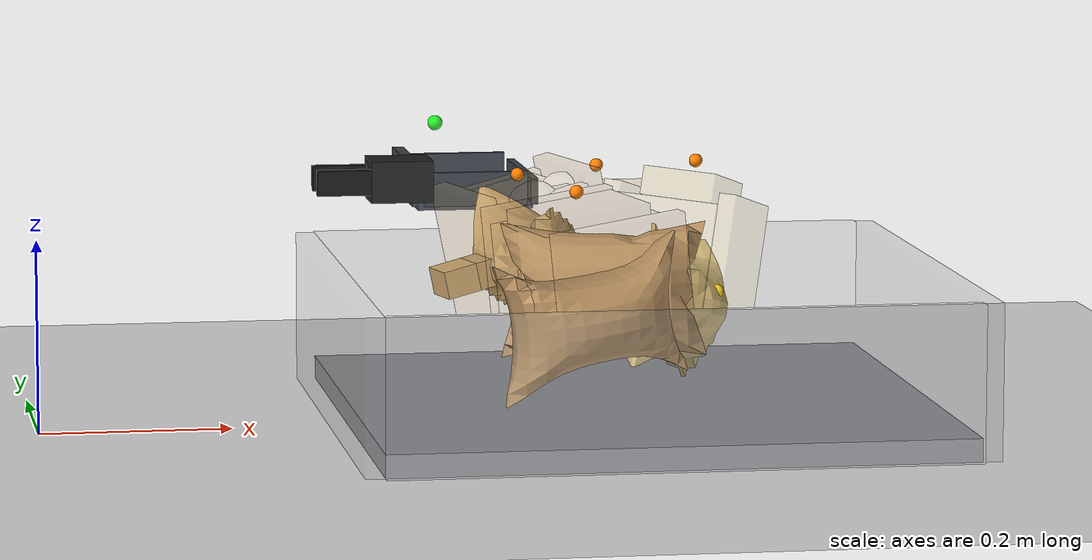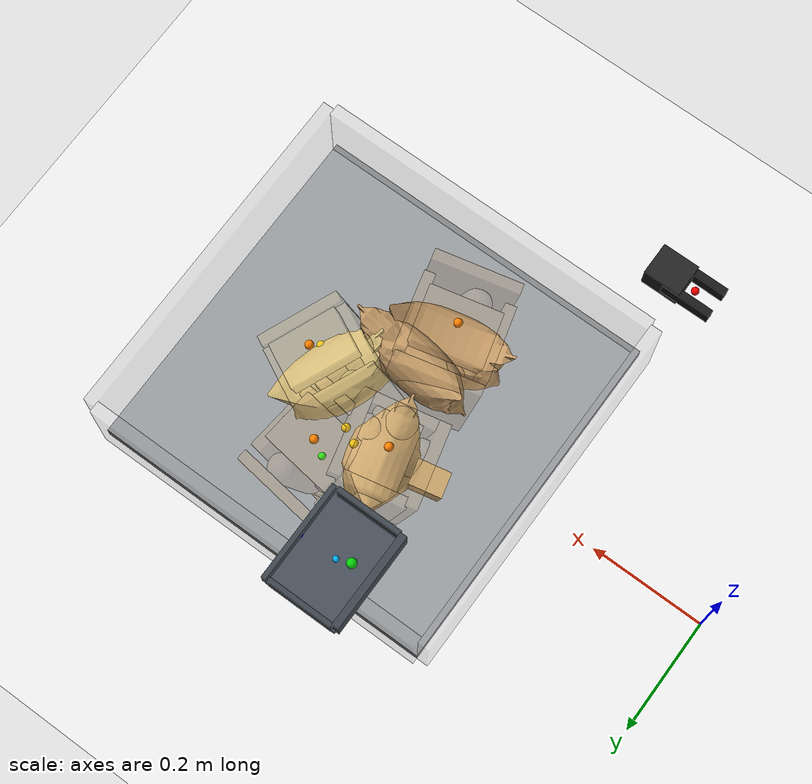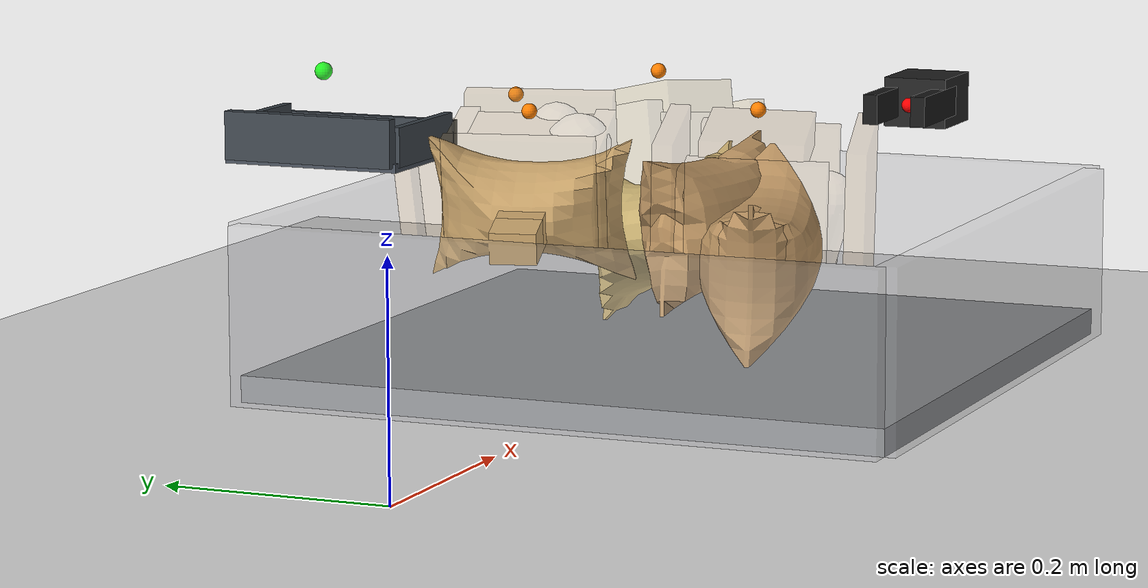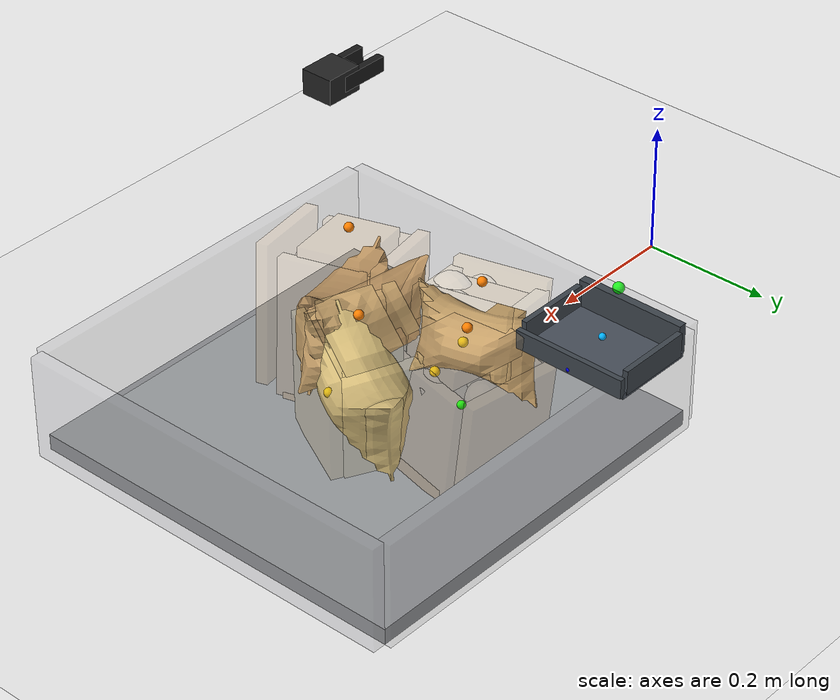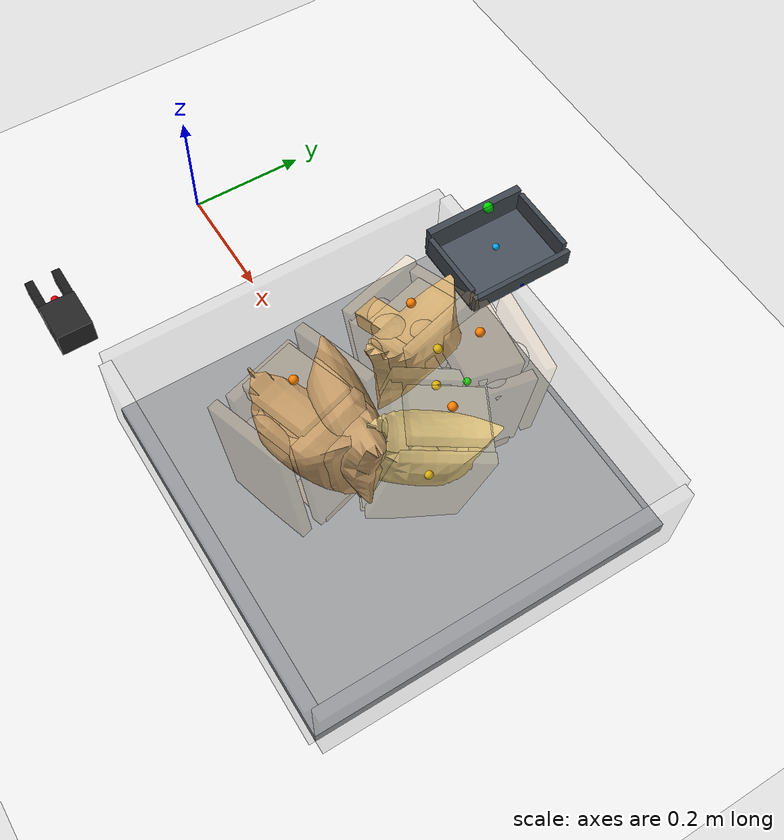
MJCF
<mujoco model="fixed_2f_scoop_pose_seed4">
  <compiler angle="radian" coordinate="local" inertiafromgeom="true" meshdir="D:/Michael/2025/01.Research/01.Parceldetection/16.Pybullet/bullet3-master (1)/bullet3-master/examples/pybullet/examples/DeformableTest/Sackcodex2/object"/>
  <option timestep="0.002" gravity="0 0 -9.81" integrator="implicitfast" iterations="100" tolerance="1e-8"/>
  <size memory="768M" nconmax="12000"/>

  <visual>
    <global azimuth="128" elevation="-20"/>
    <headlight ambient="0.34 0.34 0.34" diffuse="0.78 0.78 0.78" specular="0.15 0.15 0.15"/>
    <rgba haze="0.11 0.13 0.18 1"/>
  </visual>

  <default>
    <geom condim="4" friction="1.15 0.03 0.01" margin="0.003" solimp="0.93 0.98 0.003" solref="0.012 1"/>
    <joint damping="1.2" armature="0.002"/>
    <position kp="2500" forcelimited="true" forcerange="-420 420"/>
    <motor ctrllimited="true"/>
  </default>

  <asset>
    <mesh name="sack_0_visual_mesh" file="sack3.obj" scale="0.0743 0.0743 0.0768"/>
    <mesh name="sack_1_visual_mesh" file="sack8.obj" scale="0.0729 0.0729 0.0778"/>
    <mesh name="sack_2_visual_mesh" file="sack6Apply.obj" scale="0.0755 0.0755 0.0789"/>
    <mesh name="sack_3_visual_mesh" file="sack10.obj" scale="0.0684 0.0684 0.0700"/>
  </asset>

  <worldbody>
    <light name="key" pos="0.85 0.15 1.8" dir="-0.2 -0.1 -1" directional="true"/>
    <geom name="floor" type="plane" size="2 2 0.1" rgba="0.93 0.93 0.93 1"/>
    <geom name="work_pad" type="box" pos="0.62 0 0.012" size="0.30 0.30 0.012" rgba="0.60 0.61 0.62 1" friction="1.4 0.05 0.01"/>
    <geom name="corral_front" type="box" pos="0.93 0.00 0.08" size="0.010 0.30 0.08" rgba="0.55 0.55 0.58 0.22" friction="1.0 0.03 0.01"/>
    <geom name="corral_back" type="box" pos="0.31 0.00 0.08" size="0.010 0.30 0.08" rgba="0.55 0.55 0.58 0.18" friction="1.0 0.03 0.01"/>
    <geom name="corral_left" type="box" pos="0.62 0.30 0.08" size="0.30 0.010 0.08" rgba="0.55 0.55 0.58 0.14" friction="1.0 0.03 0.01"/>
    <geom name="corral_right" type="box" pos="0.62 -0.30 0.08" size="0.30 0.010 0.08" rgba="0.55 0.55 0.58 0.14" friction="1.0 0.03 0.01"/>
    <camera name="overview" pos="1.22 0.00 0.92" xyaxes="0 1 0 -0.46 0 0.88"/>

    <body name="gripper_mocap" mocap="true" pos="0.36 -0.33 0.30" quat="0.707107 0 -0.707107 0"/>
    <body name="scoop_mocap" mocap="true" pos="0.42 0.28 0.20" quat="1 0 0 0"/>

    <body name="gripper_ctrl_base" pos="0.36 -0.33 0.30">
      <inertial pos="0 0 0" mass="0.001" diaginertia="1e-6 1e-6 1e-6"/>
      <joint name="gripper_ctrl_x" type="slide" axis="1 0 0" limited="true" range="0.20 1.00"/>
      <body name="gripper_ctrl_y_body">
        <inertial pos="0 0 0" mass="0.001" diaginertia="1e-6 1e-6 1e-6"/>
        <joint name="gripper_ctrl_y" type="slide" axis="0 1 0" limited="true" range="-0.60 0.60"/>
        <body name="gripper_ctrl_z_body">
          <inertial pos="0 0 0" mass="0.001" diaginertia="1e-6 1e-6 1e-6"/>
          <joint name="gripper_ctrl_z" type="slide" axis="0 0 1" limited="true" range="0.04 0.70"/>
          <body name="gripper_ctrl_yaw_body">
            <inertial pos="0 0 0" mass="0.001" diaginertia="1e-6 1e-6 1e-6"/>
            <joint name="gripper_ctrl_yaw" type="hinge" axis="0 0 1" limited="true" range="-3.1416 3.1416"/>
            <body name="gripper_ctrl_pitch_body">
              <inertial pos="0 0 0" mass="0.001" diaginertia="1e-6 1e-6 1e-6"/>
              <joint name="gripper_ctrl_pitch" type="hinge" axis="0 1 0" limited="true" range="-3.1416 3.1416"/>
              <body name="gripper_ctrl_roll_body">
                <inertial pos="0 0 0" mass="0.001" diaginertia="1e-6 1e-6 1e-6"/>
                <joint name="gripper_ctrl_roll" type="hinge" axis="1 0 0" limited="true" range="-3.1416 3.1416"/>
              </body>
            </body>
          </body>
        </body>
      </body>
    </body>

    <body name="scoop_ctrl_base" pos="0.42 0.28 0.20">
      <inertial pos="0 0 0" mass="0.001" diaginertia="1e-6 1e-6 1e-6"/>
      <joint name="scoop_ctrl_x" type="slide" axis="1 0 0" limited="true" range="0.20 1.00"/>
      <body name="scoop_ctrl_y_body">
        <inertial pos="0 0 0" mass="0.001" diaginertia="1e-6 1e-6 1e-6"/>
        <joint name="scoop_ctrl_y" type="slide" axis="0 1 0" limited="true" range="-0.60 0.60"/>
        <body name="scoop_ctrl_z_body">
          <inertial pos="0 0 0" mass="0.001" diaginertia="1e-6 1e-6 1e-6"/>
          <joint name="scoop_ctrl_z" type="slide" axis="0 0 1" limited="true" range="0.04 0.70"/>
          <body name="scoop_ctrl_yaw_body">
            <inertial pos="0 0 0" mass="0.001" diaginertia="1e-6 1e-6 1e-6"/>
            <joint name="scoop_ctrl_yaw" type="hinge" axis="0 0 1" limited="true" range="-3.1416 3.1416"/>
            <body name="scoop_ctrl_pitch_body">
              <inertial pos="0 0 0" mass="0.001" diaginertia="1e-6 1e-6 1e-6"/>
              <joint name="scoop_ctrl_pitch" type="hinge" axis="0 1 0" limited="true" range="-3.1416 3.1416"/>
              <body name="scoop_ctrl_roll_body">
                <inertial pos="0 0 0" mass="0.001" diaginertia="1e-6 1e-6 1e-6"/>
                <joint name="scoop_ctrl_roll" type="hinge" axis="1 0 0" limited="true" range="-3.1416 3.1416"/>
              </body>
            </body>
          </body>
        </body>
      </body>
    </body>

    <body name="gripper_tool" pos="0.36 -0.33 0.30" quat="0.707107 0 -0.707107 0">
      <freejoint name="gripper_tool_free"/>
      <inertial pos="0 0 0.04" mass="0.08" diaginertia="0.0002 0.0002 0.0002"/>
      <geom name="gripper_palm" type="box" pos="0 0 0.030" size="0.020 0.026 0.030" rgba="0.14 0.14 0.14 1"/>
      <body name="left_finger_body" pos="0 0 0.072">
        <joint name="left_finger_slide" type="slide" axis="0 1 0" limited="true" range="0.010 0.040" damping="12"/>
        <geom name="left_finger_geom" type="box" pos="0 0.020 0" size="0.012 0.006 0.040" rgba="0.10 0.10 0.10 1" friction="2.2 0.05 0.01"/>
      </body>
      <body name="right_finger_body" pos="0 0 0.072">
        <joint name="right_finger_slide" type="slide" axis="0 -1 0" limited="true" range="0.010 0.040" damping="12"/>
        <geom name="right_finger_geom" type="box" pos="0 -0.020 0" size="0.012 0.006 0.040" rgba="0.10 0.10 0.10 1" friction="2.2 0.05 0.01"/>
      </body>
      <site name="gripper_pinch_site" pos="0 0 0.074" size="0.006" rgba="1 0 0 1"/>
    </body>

    <body name="scoop_tool" pos="0.42 0.28 0.20" quat="1 0 0 0">
      <freejoint name="scoop_tool_free"/>
      <inertial pos="0 0 0.02" mass="0.10" diaginertia="0.0003 0.0003 0.0003"/>
      <geom name="scoop_plate" type="box" pos="0.062 0 0" size="0.062 0.085 0.004" rgba="0.28 0.31 0.35 1" friction="1.7 0.05 0.01"/>
      <geom name="scoop_lip" type="box" pos="0.126 0 0.014" size="0.004 0.085 0.014" rgba="0.24 0.27 0.30 1" friction="1.7 0.05 0.01"/>
      <geom name="scoop_left_rail" type="box" pos="0.062 0.082 0.018" size="0.056 0.004 0.018" rgba="0.24 0.27 0.30 1"/>
      <geom name="scoop_right_rail" type="box" pos="0.062 -0.082 0.018" size="0.056 0.004 0.018" rgba="0.24 0.27 0.30 1"/>
      <geom name="scoop_backstop" type="box" pos="0.000 0 0.022" size="0.006 0.082 0.022" rgba="0.24 0.27 0.30 1"/>
      <site name="scoop_tip_site" pos="0.126 0 0.005" size="0.005" rgba="0 0 1 1"/>
      <site name="scoop_center_site" pos="0.060 0 0.020" size="0.005" rgba="0 0.7 1 1"/>
      <site name="score_overlay_site" pos="0.030 0 0.080" size="0.008" rgba="0 1 0 0.8"/>
    </body>

    <body name="sack_0" pos="0.6062 0.1520 0.1192" euler="-0.1224 0.0132 -0.1327">
      <freejoint name="sack_0_free"/>

      <geom name="sack_0_visual" type="mesh" mesh="sack_0_visual_mesh" rgba="0.760 0.600 0.400 0.92" contype="0" conaffinity="0"/>
      <site name="sack_0_center_site" pos="0 0 0.000" size="0.006" rgba="0 1 0 1"/>
      <site name="sack_0_top_site" pos="0 -0.0060 0.1268" size="0.007" rgba="1 0.5 0 1"/>
      <site name="sack_0_side_site" pos="0.0000 -0.0552 0.018" size="0.007" rgba="1 0.8 0 1"/>

      <geom name="sack_0_core_geom" type="ellipsoid" pos="0 0 0.0059" size="0.0442 0.0342 0.0772" mass="0.9932" rgba="0.760 0.600 0.400 0.12" friction="1.0 0.03 0.01"/>
      <geom name="sack_0_core_front" type="capsule" fromto="-0.0200 0 -0.0200 0.0450 0 0.0600" size="0.0298" mass="0.2365" rgba="0.760 0.600 0.400 0.10"/>
      <geom name="sack_0_core_left" type="capsule" fromto="-0.008 0.0364 -0.010 0.018 0.0544 0.060" size="0.0242" mass="0.4256" rgba="0.760 0.600 0.400 0.10"/>
      <geom name="sack_0_core_right" type="capsule" fromto="-0.006 -0.0364 -0.008 0.020 -0.0564 0.054" size="0.0222" mass="0.4256" rgba="0.760 0.600 0.400 0.10"/>

      <body name="sack_0_bottom_support_proxy_body" pos="0 -0.0098 -0.0833">
        <joint name="sack_0_bottom_x" type="slide" axis="1 0 0" limited="true" range="-0.012 0.012" damping="18" stiffness="453.4"/>
        <joint name="sack_0_bottom_y" type="slide" axis="0 1 0" limited="true" range="-0.012 0.012" damping="18" stiffness="453.4"/>
        <joint name="sack_0_bottom_z" type="slide" axis="0 0 1" limited="true" range="-0.008 0.020" damping="24" stiffness="558.5"/>
        <geom name="sack_0_bottom_support_proxy" type="box" size="0.0748 0.0612 0.0100" mass="0.1892" rgba="0.760 0.600 0.400 0.34" friction="1.55 0.05 0.01"/>
      </body>

      <body name="sack_0_top_grasp_proxy_body" pos="0.0000 -0.0060 0.0968">
        <joint name="sack_0_top_x" type="slide" axis="1 0 0" limited="true" range="-0.018 0.018" damping="12" stiffness="174.1"/>
        <joint name="sack_0_top_y" type="slide" axis="0 1 0" limited="true" range="-0.018 0.018" damping="12" stiffness="174.1"/>
        <joint name="sack_0_top_z" type="slide" axis="0 0 1" limited="true" range="-0.040 0.010" damping="14" stiffness="127.8"/>
        <geom name="sack_0_top_grasp_proxy" type="box" size="0.0588 0.0452 0.0150" mass="0.1419" rgba="0.760 0.600 0.400 0.26" friction="2.2 0.05 0.01"/>
      </body>

      <body name="sack_0_left_side_proxy_body" pos="0 0.0816 0.010">
        <joint name="sack_0_left_side_slide" type="slide" axis="0 -1 0" limited="true" range="-0.028 0.016" damping="16" stiffness="225.1"/>
        <geom name="sack_0_left_side_proxy" type="box" size="0.0708 0.0090 0.0813" mass="0.1419" rgba="0.760 0.600 0.400 0.24"/>
      </body>

      <body name="sack_0_right_side_proxy_body" pos="0 -0.0776 0.010">
        <joint name="sack_0_right_side_slide" type="slide" axis="0 1 0" limited="true" range="-0.028 0.016" damping="16" stiffness="208.8"/>
        <geom name="sack_0_right_side_proxy" type="box" size="0.0708 0.0090 0.0813" mass="0.1419" rgba="0.760 0.600 0.400 0.24"/>
      </body>

      <body name="sack_0_front_proxy_body" pos="0.0648 0 0.000">
        <joint name="sack_0_front_slide" type="slide" axis="-1 0 0" limited="true" range="-0.022 0.012" damping="15" stiffness="216.7"/>
        <geom name="sack_0_front_support_proxy" type="box" size="0.0090 0.0612 0.0793" mass="0.1182" rgba="0.760 0.600 0.400 0.22"/>
      </body>

      <body name="sack_0_back_proxy_body" pos="-0.0648 0 0.000">
        <joint name="sack_0_back_slide" type="slide" axis="1 0 0" limited="true" range="-0.022 0.012" damping="15" stiffness="200.4"/>
        <geom name="sack_0_back_support_proxy" type="box" size="0.0090 0.0612 0.0793" mass="0.1182" rgba="0.760 0.600 0.400 0.22"/>
      </body>

      <body name="sack_0_shape_proxy_body" pos="0.0000 -0.0284 0.0422">
        <joint name="sack_0_bulge_y" type="slide" axis="0 1 0" limited="true" range="-0.020 0.020" damping="8" stiffness="104.4"/>
        <joint name="sack_0_bulge_z" type="slide" axis="0 0 1" limited="true" range="-0.014 0.028" damping="8" stiffness="103.3"/>
        <geom name="sack_0_shape_proxy" type="ellipsoid" size="0.0202 0.0163 0.0261" mass="0.0946" rgba="0.760 0.600 0.400 0.28"/>
      </body>
    </body>

    <body name="sack_1" pos="0.6638 0.0343 0.1161" euler="-0.1608 0.1702 -2.0245">
      <freejoint name="sack_1_free"/>

      <geom name="sack_1_visual" type="mesh" mesh="sack_1_visual_mesh" rgba="0.840 0.740 0.480 0.92" contype="0" conaffinity="0"/>
      <site name="sack_1_center_site" pos="0 0 0.000" size="0.006" rgba="0 1 0 1"/>
      <site name="sack_1_top_site" pos="0 0.0060 0.1510" size="0.007" rgba="1 0.5 0 1"/>
      <site name="sack_1_side_site" pos="0.0000 0.0489 0.018" size="0.007" rgba="1 0.8 0 1"/>

      <geom name="sack_1_core_geom" type="ellipsoid" pos="0 0 0.0059" size="0.0501 0.0418 0.0888" mass="1.0941" rgba="0.840 0.740 0.480 0.12" friction="1.0 0.03 0.01"/>
      <geom name="sack_1_core_front" type="capsule" fromto="-0.0200 0 -0.0200 0.0450 0 0.0600" size="0.0309" mass="0.2605" rgba="0.840 0.740 0.480 0.10"/>
      <geom name="sack_1_core_left" type="capsule" fromto="-0.008 0.0255 -0.010 0.018 0.0435 0.060" size="0.0241" mass="0.4689" rgba="0.840 0.740 0.480 0.10"/>
      <geom name="sack_1_core_right" type="capsule" fromto="-0.006 -0.0255 -0.008 0.020 -0.0455 0.054" size="0.0221" mass="0.4689" rgba="0.840 0.740 0.480 0.10"/>

      <body name="sack_1_bottom_support_proxy_body" pos="0 0.0032 -0.1084">
        <joint name="sack_1_bottom_x" type="slide" axis="1 0 0" limited="true" range="-0.012 0.012" damping="18" stiffness="488.0"/>
        <joint name="sack_1_bottom_y" type="slide" axis="0 1 0" limited="true" range="-0.012 0.012" damping="18" stiffness="488.0"/>
        <joint name="sack_1_bottom_z" type="slide" axis="0 0 1" limited="true" range="-0.008 0.020" damping="24" stiffness="600.9"/>
        <geom name="sack_1_bottom_support_proxy" type="box" size="0.0718 0.0549 0.0100" mass="0.2084" rgba="0.840 0.740 0.480 0.34" friction="1.55 0.05 0.01"/>
      </body>

      <body name="sack_1_top_grasp_proxy_body" pos="0.0000 0.0060 0.1210">
        <joint name="sack_1_top_x" type="slide" axis="1 0 0" limited="true" range="-0.018 0.018" damping="12" stiffness="187.5"/>
        <joint name="sack_1_top_y" type="slide" axis="0 1 0" limited="true" range="-0.018 0.018" damping="12" stiffness="187.5"/>
        <joint name="sack_1_top_z" type="slide" axis="0 0 1" limited="true" range="-0.040 0.010" damping="14" stiffness="139.3"/>
        <geom name="sack_1_top_grasp_proxy" type="box" size="0.0558 0.0389 0.0150" mass="0.1563" rgba="0.840 0.740 0.480 0.26" friction="2.2 0.05 0.01"/>
      </body>

      <body name="sack_1_left_side_proxy_body" pos="0 0.0644 0.010">
        <joint name="sack_1_left_side_slide" type="slide" axis="0 -1 0" limited="true" range="-0.028 0.016" damping="16" stiffness="248.4"/>
        <geom name="sack_1_left_side_proxy" type="box" size="0.0678 0.0090 0.1064" mass="0.1563" rgba="0.840 0.740 0.480 0.24"/>
      </body>

      <body name="sack_1_right_side_proxy_body" pos="0 -0.0604 0.010">
        <joint name="sack_1_right_side_slide" type="slide" axis="0 1 0" limited="true" range="-0.028 0.016" damping="16" stiffness="230.2"/>
        <geom name="sack_1_right_side_proxy" type="box" size="0.0678 0.0090 0.1064" mass="0.1563" rgba="0.840 0.740 0.480 0.24"/>
      </body>

      <body name="sack_1_front_proxy_body" pos="0.0618 0 0.000">
        <joint name="sack_1_front_slide" type="slide" axis="-1 0 0" limited="true" range="-0.022 0.012" damping="15" stiffness="234.0"/>
        <geom name="sack_1_front_support_proxy" type="box" size="0.0090 0.0549 0.1044" mass="0.1303" rgba="0.840 0.740 0.480 0.22"/>
      </body>

      <body name="sack_1_back_proxy_body" pos="-0.0618 0 0.000">
        <joint name="sack_1_back_slide" type="slide" axis="1 0 0" limited="true" range="-0.022 0.012" damping="15" stiffness="215.8"/>
        <geom name="sack_1_back_support_proxy" type="box" size="0.0090 0.0549 0.1044" mass="0.1303" rgba="0.840 0.740 0.480 0.22"/>
      </body>

      <body name="sack_1_shape_proxy_body" pos="0.0000 0.0175 0.0307">
        <joint name="sack_1_bulge_y" type="slide" axis="0 1 0" limited="true" range="-0.020 0.020" damping="8" stiffness="81.3"/>
        <joint name="sack_1_bulge_z" type="slide" axis="0 0 1" limited="true" range="-0.014 0.028" damping="8" stiffness="86.0"/>
        <geom name="sack_1_shape_proxy" type="ellipsoid" size="0.0201 0.0161 0.0261" mass="0.1042" rgba="0.840 0.740 0.480 0.28"/>
      </body>
    </body>

    <body name="sack_2" pos="0.5578 -0.0998 0.1216" euler="0.0635 -0.1103 -2.8699">
      <freejoint name="sack_2_free"/>

      <geom name="sack_2_visual" type="mesh" mesh="sack_2_visual_mesh" rgba="0.760 0.600 0.400 0.92" contype="0" conaffinity="0"/>
      <site name="sack_2_center_site" pos="0 0 0.000" size="0.006" rgba="0 1 0 1"/>
      <site name="sack_2_top_site" pos="0 -0.0060 0.1322" size="0.007" rgba="1 0.5 0 1"/>
      <site name="sack_2_side_site" pos="0.0000 -0.0564 0.018" size="0.007" rgba="1 0.8 0 1"/>

      <geom name="sack_2_core_geom" type="ellipsoid" pos="0 0 0.0058" size="0.0445 0.0347 0.0780" mass="0.9427" rgba="0.760 0.600 0.400 0.12" friction="1.0 0.03 0.01"/>
      <geom name="sack_2_core_front" type="capsule" fromto="-0.0200 0 -0.0200 0.0450 0 0.0600" size="0.0302" mass="0.2245" rgba="0.760 0.600 0.400 0.10"/>
      <geom name="sack_2_core_left" type="capsule" fromto="-0.008 0.0406 -0.010 0.018 0.0586 0.060" size="0.0242" mass="0.4040" rgba="0.760 0.600 0.400 0.10"/>
      <geom name="sack_2_core_right" type="capsule" fromto="-0.006 -0.0406 -0.008 0.020 -0.0606 0.054" size="0.0222" mass="0.4040" rgba="0.760 0.600 0.400 0.10"/>

      <body name="sack_2_bottom_support_proxy_body" pos="0 -0.0101 -0.1070">
        <joint name="sack_2_bottom_x" type="slide" axis="1 0 0" limited="true" range="-0.012 0.012" damping="18" stiffness="465.3"/>
        <joint name="sack_2_bottom_y" type="slide" axis="0 1 0" limited="true" range="-0.012 0.012" damping="18" stiffness="465.3"/>
        <joint name="sack_2_bottom_z" type="slide" axis="0 0 1" limited="true" range="-0.008 0.020" damping="24" stiffness="573.1"/>
        <geom name="sack_2_bottom_support_proxy" type="box" size="0.0752 0.0624 0.0100" mass="0.1796" rgba="0.760 0.600 0.400 0.34" friction="1.55 0.05 0.01"/>
      </body>

      <body name="sack_2_top_grasp_proxy_body" pos="0.0000 -0.0060 0.1022">
        <joint name="sack_2_top_x" type="slide" axis="1 0 0" limited="true" range="-0.018 0.018" damping="12" stiffness="178.7"/>
        <joint name="sack_2_top_y" type="slide" axis="0 1 0" limited="true" range="-0.018 0.018" damping="12" stiffness="178.7"/>
        <joint name="sack_2_top_z" type="slide" axis="0 0 1" limited="true" range="-0.040 0.010" damping="14" stiffness="131.8"/>
        <geom name="sack_2_top_grasp_proxy" type="box" size="0.0592 0.0464 0.0150" mass="0.1347" rgba="0.760 0.600 0.400 0.26" friction="2.2 0.05 0.01"/>
      </body>

      <body name="sack_2_left_side_proxy_body" pos="0 0.0870 0.010">
        <joint name="sack_2_left_side_slide" type="slide" axis="0 -1 0" limited="true" range="-0.028 0.016" damping="16" stiffness="233.0"/>
        <geom name="sack_2_left_side_proxy" type="box" size="0.0712 0.0090 0.1050" mass="0.1347" rgba="0.760 0.600 0.400 0.24"/>
      </body>

      <body name="sack_2_right_side_proxy_body" pos="0 -0.0830 0.010">
        <joint name="sack_2_right_side_slide" type="slide" axis="0 1 0" limited="true" range="-0.028 0.016" damping="16" stiffness="216.0"/>
        <geom name="sack_2_right_side_proxy" type="box" size="0.0712 0.0090 0.1050" mass="0.1347" rgba="0.760 0.600 0.400 0.24"/>
      </body>

      <body name="sack_2_front_proxy_body" pos="0.0652 0 0.000">
        <joint name="sack_2_front_slide" type="slide" axis="-1 0 0" limited="true" range="-0.022 0.012" damping="15" stiffness="222.6"/>
        <geom name="sack_2_front_support_proxy" type="box" size="0.0090 0.0624 0.1030" mass="0.1122" rgba="0.760 0.600 0.400 0.22"/>
      </body>

      <body name="sack_2_back_proxy_body" pos="-0.0652 0 0.000">
        <joint name="sack_2_back_slide" type="slide" axis="1 0 0" limited="true" range="-0.022 0.012" damping="15" stiffness="205.7"/>
        <geom name="sack_2_back_support_proxy" type="box" size="0.0090 0.0624 0.1030" mass="0.1122" rgba="0.760 0.600 0.400 0.22"/>
      </body>

      <body name="sack_2_shape_proxy_body" pos="0.0000 -0.0326 0.0382">
        <joint name="sack_2_bulge_y" type="slide" axis="0 1 0" limited="true" range="-0.020 0.020" damping="8" stiffness="96.5"/>
        <joint name="sack_2_bulge_z" type="slide" axis="0 0 1" limited="true" range="-0.014 0.028" damping="8" stiffness="97.4"/>
        <geom name="sack_2_shape_proxy" type="ellipsoid" size="0.0202 0.0164 0.0261" mass="0.0898" rgba="0.760 0.600 0.400 0.28"/>
      </body>
    </body>

    <body name="sack_3" pos="0.5262 0.1103 0.1558" euler="0.0586 -0.2060 -1.3137">
      <freejoint name="sack_3_free"/>

      <geom name="sack_3_visual" type="mesh" mesh="sack_3_visual_mesh" rgba="0.820 0.670 0.440 0.92" contype="0" conaffinity="0"/>
      <site name="sack_3_center_site" pos="0 0 0.000" size="0.006" rgba="0 1 0 1"/>
      <site name="sack_3_top_site" pos="0 0.0060 0.0895" size="0.007" rgba="1 0.5 0 1"/>
      <site name="sack_3_side_site" pos="0.0000 0.0474 0.018" size="0.007" rgba="1 0.8 0 1"/>

      <geom name="sack_3_core_geom" type="ellipsoid" pos="0 0 0.0056" size="0.0449 0.0348 0.0666" mass="0.8257" rgba="0.820 0.670 0.440 0.12" friction="1.0 0.03 0.01"/>
      <geom name="sack_3_core_front" type="capsule" fromto="-0.0200 0 -0.0200 0.0450 0 0.0600" size="0.0294" mass="0.1966" rgba="0.820 0.670 0.440 0.10"/>
      <geom name="sack_3_core_left" type="capsule" fromto="-0.008 0.0253 -0.010 0.018 0.0433 0.060" size="0.0241" mass="0.3539" rgba="0.820 0.670 0.440 0.10"/>
      <geom name="sack_3_core_right" type="capsule" fromto="-0.006 -0.0253 -0.008 0.020 -0.0453 0.054" size="0.0221" mass="0.3539" rgba="0.820 0.670 0.440 0.10"/>

      <body name="sack_3_bottom_support_proxy_body" pos="0 0.0102 -0.0796">
        <joint name="sack_3_bottom_x" type="slide" axis="1 0 0" limited="true" range="-0.012 0.012" damping="18" stiffness="442.7"/>
        <joint name="sack_3_bottom_y" type="slide" axis="0 1 0" limited="true" range="-0.012 0.012" damping="18" stiffness="442.7"/>
        <joint name="sack_3_bottom_z" type="slide" axis="0 0 1" limited="true" range="-0.008 0.020" damping="24" stiffness="545.5"/>
        <geom name="sack_3_bottom_support_proxy" type="box" size="0.0724 0.0534 0.0100" mass="0.1573" rgba="0.820 0.670 0.440 0.34" friction="1.55 0.05 0.01"/>
      </body>

      <body name="sack_3_top_grasp_proxy_body" pos="0.0000 0.0060 0.0595">
        <joint name="sack_3_top_x" type="slide" axis="1 0 0" limited="true" range="-0.018 0.018" damping="12" stiffness="169.9"/>
        <joint name="sack_3_top_y" type="slide" axis="0 1 0" limited="true" range="-0.018 0.018" damping="12" stiffness="169.9"/>
        <joint name="sack_3_top_z" type="slide" axis="0 0 1" limited="true" range="-0.040 0.010" damping="14" stiffness="124.2"/>
        <geom name="sack_3_top_grasp_proxy" type="box" size="0.0564 0.0374 0.0150" mass="0.1180" rgba="0.820 0.670 0.440 0.26" friction="2.2 0.05 0.01"/>
      </body>

      <body name="sack_3_left_side_proxy_body" pos="0 0.0627 0.010">
        <joint name="sack_3_left_side_slide" type="slide" axis="0 -1 0" limited="true" range="-0.028 0.016" damping="16" stiffness="217.1"/>
        <geom name="sack_3_left_side_proxy" type="box" size="0.0684 0.0090 0.0776" mass="0.1180" rgba="0.820 0.670 0.440 0.24"/>
      </body>

      <body name="sack_3_right_side_proxy_body" pos="0 -0.0587 0.010">
        <joint name="sack_3_right_side_slide" type="slide" axis="0 1 0" limited="true" range="-0.028 0.016" damping="16" stiffness="201.4"/>
        <geom name="sack_3_right_side_proxy" type="box" size="0.0684 0.0090 0.0776" mass="0.1180" rgba="0.820 0.670 0.440 0.24"/>
      </body>

      <body name="sack_3_front_proxy_body" pos="0.0624 0 0.000">
        <joint name="sack_3_front_slide" type="slide" axis="-1 0 0" limited="true" range="-0.022 0.012" damping="15" stiffness="211.3"/>
        <geom name="sack_3_front_support_proxy" type="box" size="0.0090 0.0534 0.0756" mass="0.0983" rgba="0.820 0.670 0.440 0.22"/>
      </body>

      <body name="sack_3_back_proxy_body" pos="-0.0624 0 0.000">
        <joint name="sack_3_back_slide" type="slide" axis="1 0 0" limited="true" range="-0.022 0.012" damping="15" stiffness="195.6"/>
        <geom name="sack_3_back_support_proxy" type="box" size="0.0090 0.0534 0.0756" mass="0.0983" rgba="0.820 0.670 0.440 0.22"/>
      </body>

      <body name="sack_3_shape_proxy_body" pos="0.0000 0.0173 0.0458">
        <joint name="sack_3_bulge_y" type="slide" axis="0 1 0" limited="true" range="-0.020 0.020" damping="8" stiffness="111.6"/>
        <joint name="sack_3_bulge_z" type="slide" axis="0 0 1" limited="true" range="-0.014 0.028" damping="8" stiffness="108.7"/>
        <geom name="sack_3_shape_proxy" type="ellipsoid" size="0.0201 0.0161 0.0263" mass="0.0786" rgba="0.820 0.670 0.440 0.28"/>
      </body>
    </body>
  </worldbody>

  <equality>
    <weld name="gripper_follow" body1="gripper_mocap" body2="gripper_tool" torquescale="400" solref="0.002 1" solimp="0.99 0.999 0.0001"/>
    <weld name="scoop_follow" body1="scoop_mocap" body2="scoop_tool" torquescale="500" solref="0.002 1" solimp="0.99 0.999 0.0001"/>
  </equality>

  <actuator>
    <position name="gripper_ctrl_x_act" joint="gripper_ctrl_x" ctrlrange="0.20 1.00" kp="3500" forcerange="-300 300"/>
    <position name="gripper_ctrl_y_act" joint="gripper_ctrl_y" ctrlrange="-0.60 0.60" kp="3500" forcerange="-300 300"/>
    <position name="gripper_ctrl_z_act" joint="gripper_ctrl_z" ctrlrange="0.04 0.70" kp="3500" forcerange="-300 300"/>
    <position name="gripper_ctrl_yaw_act" joint="gripper_ctrl_yaw" ctrlrange="-3.1416 3.1416" kp="1800" forcerange="-250 250"/>
    <position name="gripper_ctrl_pitch_act" joint="gripper_ctrl_pitch" ctrlrange="-3.1416 3.1416" kp="1800" forcerange="-250 250"/>
    <position name="gripper_ctrl_roll_act" joint="gripper_ctrl_roll" ctrlrange="-3.1416 3.1416" kp="1800" forcerange="-250 250"/>
    <position name="scoop_ctrl_x_act" joint="scoop_ctrl_x" ctrlrange="0.20 1.00" kp="3500" forcerange="-300 300"/>
    <position name="scoop_ctrl_y_act" joint="scoop_ctrl_y" ctrlrange="-0.60 0.60" kp="3500" forcerange="-300 300"/>
    <position name="scoop_ctrl_z_act" joint="scoop_ctrl_z" ctrlrange="0.04 0.70" kp="3500" forcerange="-300 300"/>
    <position name="scoop_ctrl_yaw_act" joint="scoop_ctrl_yaw" ctrlrange="-3.1416 3.1416" kp="1800" forcerange="-250 250"/>
    <position name="scoop_ctrl_pitch_act" joint="scoop_ctrl_pitch" ctrlrange="-3.1416 3.1416" kp="1800" forcerange="-250 250"/>
    <position name="scoop_ctrl_roll_act" joint="scoop_ctrl_roll" ctrlrange="-3.1416 3.1416" kp="1800" forcerange="-250 250"/>
    <position name="left_finger_act" joint="left_finger_slide" ctrlrange="0.010 0.040" kp="2800" forcerange="-220 220"/>
    <position name="right_finger_act" joint="right_finger_slide" ctrlrange="0.010 0.040" kp="2800" forcerange="-220 220"/>
  </actuator>

  <contact>
    <exclude body1="sack_0_top_grasp_proxy_body" body2="sack_0_left_side_proxy_body"/>
    <exclude body1="sack_0_top_grasp_proxy_body" body2="sack_0_right_side_proxy_body"/>
    <exclude body1="sack_1_top_grasp_proxy_body" body2="sack_1_left_side_proxy_body"/>
    <exclude body1="sack_1_top_grasp_proxy_body" body2="sack_1_right_side_proxy_body"/>
    <exclude body1="sack_2_top_grasp_proxy_body" body2="sack_2_left_side_proxy_body"/>
    <exclude body1="sack_2_top_grasp_proxy_body" body2="sack_2_right_side_proxy_body"/>
    <exclude body1="sack_3_top_grasp_proxy_body" body2="sack_3_left_side_proxy_body"/>
    <exclude body1="sack_3_top_grasp_proxy_body" body2="sack_3_right_side_proxy_body"/>
  </contact>
</mujoco>
